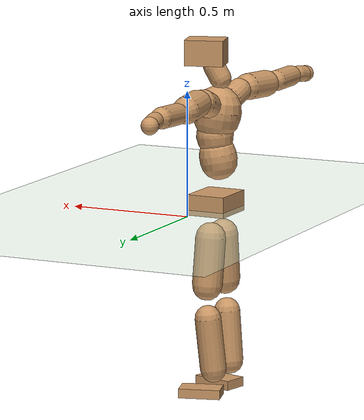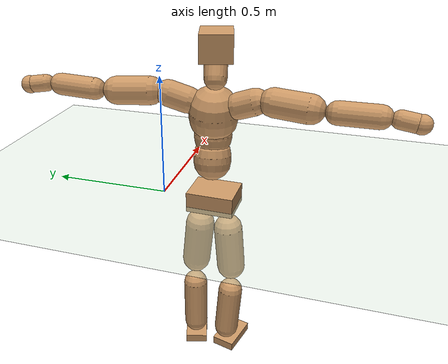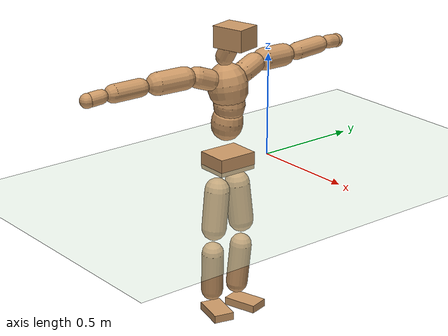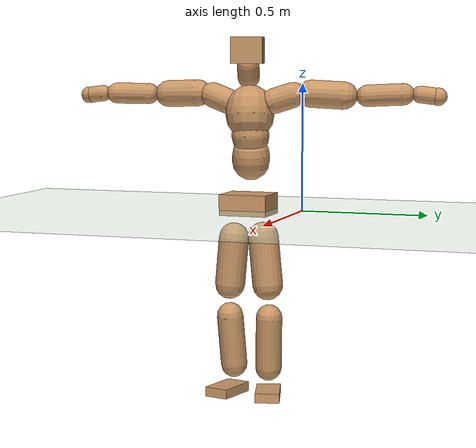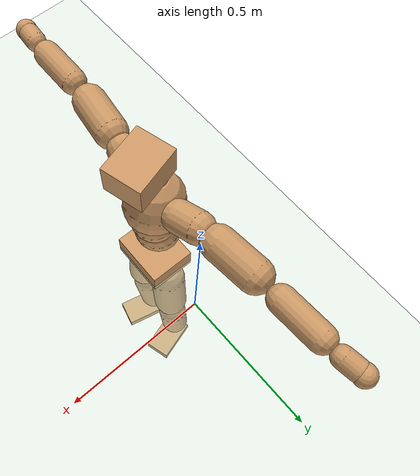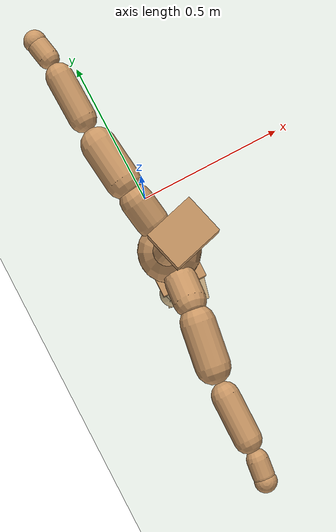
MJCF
<mujoco model="humanoid">
  <compiler coordinate="local" angle="radian"/>
  <default>
    <joint damping="0.0" armature="0.01" stiffness="0.0" limited="true"/>
    <geom conaffinity="1" condim="3" contype="7" margin="0.001" rgba="0.8 0.6 .4 1"/>
  </default>
  <asset>
    <texture type="skybox" builtin="gradient" rgb1=".4 .5 .6" rgb2="0 0 0" width="100" height="100"/>
    <texture builtin="flat" height="1278" mark="cross" markrgb="1 1 1" name="texgeom" random="0.01" rgb1="0.8 0.6 0.4" rgb2="0.8 0.6 0.4" type="cube" width="127"/>
    <texture builtin="checker" height="100" name="texplane" rgb1="0 0 0" rgb2="0.8 0.8 0.8" type="2d" width="100"/>
    <material name="MatPlane" reflectance="0.5" shininess="1" specular="1" texrepeat="60 60" texture="texplane"/>
    <material name="geom" texture="texgeom" texuniform="true"/>
  </asset>
  <worldbody>
    <light cutoff="100" diffuse="1 1 1" dir="-0 0 -1.3" directional="true" exponent="1" pos="0 0 1.3" specular=".1 .1 .1"/>
    <geom conaffinity="1" condim="3" name="floor" pos="0 0 0" rgba="0.8 0.9 0.8 1" size="100 100 .2" type="plane" material="MatPlane"/>
    <body name="Pelvis" pos="-0.0058 -0.2281 0.0265">
      <freejoint name="Pelvis"/>
      <geom type="box" contype="1" conaffinity="1" density="500" pos="-0.0112 0.0002 -0.0077" size="0.0787 0.0968 0.0418" quat="1.0000 0.0000 0.0000 -0.0092" name="Pelvis"/>
      <body name="L_Hip" pos="-0.0184 0.054 -0.0747">
        <joint name="L_Hip_x" type="hinge" pos="0 0 0" axis="1 0 0" stiffness="800" damping="80" armature="0.02" range="-180.0000 180.0000"/>
        <joint name="L_Hip_y" type="hinge" pos="0 0 0" axis="0 1 0" stiffness="800" damping="80" armature="0.02" range="-180.0000 180.0000"/>
        <joint name="L_Hip_z" type="hinge" pos="0 0 0" axis="0 0 1" stiffness="800" damping="80" armature="0.02" range="-180.0000 180.0000"/>
        <geom type="capsule" contype="1" conaffinity="1" density="500" fromto="0.0018 0.0067 -0.0641 0.0071 0.0268 -0.2566" size="0.0607" name="L_Hip"/>
        <body name="L_Knee" pos="0.0089 0.0335 -0.3207">
          <joint name="L_Knee_x" type="hinge" pos="0 0 0" axis="1 0 0" stiffness="800" damping="80" armature="0.02" range="-180.0000 180.0000"/>
          <joint name="L_Knee_y" type="hinge" pos="0 0 0" axis="0 1 0" stiffness="800" damping="80" armature="0.02" range="-180.0000 180.0000"/>
          <joint name="L_Knee_z" type="hinge" pos="0 0 0" axis="0 0 1" stiffness="800" damping="80" armature="0.02" range="-180.0000 180.0000"/>
          <geom type="capsule" contype="1" conaffinity="1" density="500" fromto="-0.0068 -0.0028 -0.0697 -0.0272 -0.0111 -0.2789" size="0.0528" name="L_Knee"/>
          <body name="L_Ankle" pos="-0.034 -0.0138 -0.3486">
            <joint name="L_Ankle_x" type="hinge" pos="0 0 0" axis="1 0 0" stiffness="800" damping="80" armature="0.02" range="-180.0000 180.0000"/>
            <joint name="L_Ankle_y" type="hinge" pos="0 0 0" axis="0 1 0" stiffness="800" damping="80" armature="0.02" range="-180.0000 180.0000"/>
            <joint name="L_Ankle_z" type="hinge" pos="0 0 0" axis="0 0 1" stiffness="800" damping="80" armature="0.02" range="-180.0000 180.0000"/>
            <geom type="box" contype="1" conaffinity="1" density="500" pos="0.0556 0.0154 -0.0256" size="0.0839 0.0484 0.0191" quat="0.9909 0.0000 0.0000 0.1349" name="L_Ankle"/>
            <body name="L_Toe" pos="0.1112 0.0308 -0.0512">
              <joint name="L_Toe_x" type="hinge" pos="0 0 0" axis="1 0 0" stiffness="500" damping="50" armature="0.02" range="-180.0000 180.0000"/>
              <joint name="L_Toe_y" type="hinge" pos="0 0 0" axis="0 1 0" stiffness="500" damping="50" armature="0.02" range="-180.0000 180.0000"/>
              <joint name="L_Toe_z" type="hinge" pos="0 0 0" axis="0 0 1" stiffness="500" damping="50" armature="0.02" range="-180.0000 180.0000"/>
              <geom type="box" contype="1" conaffinity="1" density="500" pos="0.0000 0.0000 0.0244" size="0.0011 0.0024 0.0009" quat="0.9900 0.0000 0.0000 0.1408" name="L_Toe"/>
            </body>
          </body>
        </body>
      </body>
      <body name="R_Hip" pos="-0.0132 -0.0565 -0.0823">
        <joint name="R_Hip_x" type="hinge" pos="0 0 0" axis="1 0 0" stiffness="800" damping="80" armature="0.02" range="-180.0000 180.0000"/>
        <joint name="R_Hip_y" type="hinge" pos="0 0 0" axis="0 1 0" stiffness="800" damping="80" armature="0.02" range="-180.0000 180.0000"/>
        <joint name="R_Hip_z" type="hinge" pos="0 0 0" axis="0 0 1" stiffness="800" damping="80" armature="0.02" range="-180.0000 180.0000"/>
        <geom type="capsule" contype="1" conaffinity="1" density="500" fromto="-0.0007 -0.0060 -0.0634 -0.0028 -0.0239 -0.2536" size="0.0601" name="R_Hip"/>
        <body name="R_Knee" pos="-0.0035 -0.0298 -0.317">
          <joint name="R_Knee_x" type="hinge" pos="0 0 0" axis="1 0 0" stiffness="800" damping="80" armature="0.02" range="-180.0000 180.0000"/>
          <joint name="R_Knee_y" type="hinge" pos="0 0 0" axis="0 1 0" stiffness="800" damping="80" armature="0.02" range="-180.0000 180.0000"/>
          <joint name="R_Knee_z" type="hinge" pos="0 0 0" axis="0 0 1" stiffness="800" damping="80" armature="0.02" range="-180.0000 180.0000"/>
          <geom type="capsule" contype="1" conaffinity="1" density="500" fromto="-0.0064 0.0034 -0.0680 -0.0257 0.0134 -0.2720" size="0.0531" name="R_Knee"/>
          <body name="R_Ankle" pos="-0.0321 0.0168 -0.34">
            <joint name="R_Ankle_x" type="hinge" pos="0 0 0" axis="1 0 0" stiffness="800" damping="80" armature="0.02" range="-180.0000 180.0000"/>
            <joint name="R_Ankle_y" type="hinge" pos="0 0 0" axis="0 1 0" stiffness="800" damping="80" armature="0.02" range="-180.0000 180.0000"/>
            <joint name="R_Ankle_z" type="hinge" pos="0 0 0" axis="0 0 1" stiffness="800" damping="80" armature="0.02" range="-180.0000 180.0000"/>
            <geom type="box" contype="1" conaffinity="1" density="500" pos="0.0596 -0.0148 -0.0251" size="0.0833 0.05 0.0191" quat="0.9926 0.0000 0.0000 -0.1213" name="R_Ankle"/>
            <body name="R_Toe" pos="0.1192 -0.0296 -0.0502">
              <joint name="R_Toe_x" type="hinge" pos="0 0 0" axis="1 0 0" stiffness="500" damping="50" armature="0.02" range="-180.0000 180.0000"/>
              <joint name="R_Toe_y" type="hinge" pos="0 0 0" axis="0 1 0" stiffness="500" damping="50" armature="0.02" range="-180.0000 180.0000"/>
              <joint name="R_Toe_z" type="hinge" pos="0 0 0" axis="0 0 1" stiffness="500" damping="50" armature="0.02" range="-180.0000 180.0000"/>
              <geom type="box" contype="1" conaffinity="1" density="500" pos="0.0000 0.0000 0.0259" size="0.001 0.0025 0.001" quat="0.9937 0.0000 0.0000 -0.1116" name="R_Toe"/>
            </body>
          </body>
        </body>
      </body>
      <body name="Torso" pos="-0.0357 0.0037 0.1109">
        <joint name="Torso_x" type="hinge" pos="0 0 0" axis="1 0 0" stiffness="1000" damping="100" armature="0.02" range="-180.0000 180.0000"/>
        <joint name="Torso_y" type="hinge" pos="0 0 0" axis="0 1 0" stiffness="1000" damping="100" armature="0.02" range="-180.0000 180.0000"/>
        <joint name="Torso_z" type="hinge" pos="0 0 0" axis="0 0 1" stiffness="1000" damping="100" armature="0.02" range="-180.0000 180.0000"/>
        <geom type="capsule" contype="1" conaffinity="1" density="500" fromto="0.0136 0.0029 0.0776 0.0091 0.0019 0.0517" size="0.0749" name="Torso"/>
        <body name="Spine" pos="0.0227 0.0048 0.1293">
          <joint name="Spine_x" type="hinge" pos="0 0 0" axis="1 0 0" stiffness="1000" damping="100" armature="0.02" range="-180.0000 180.0000"/>
          <joint name="Spine_y" type="hinge" pos="0 0 0" axis="0 1 0" stiffness="1000" damping="100" armature="0.02" range="-180.0000 180.0000"/>
          <joint name="Spine_z" type="hinge" pos="0 0 0" axis="0 0 1" stiffness="1000" damping="100" armature="0.02" range="-180.0000 180.0000"/>
          <geom type="capsule" contype="1" conaffinity="1" density="500" fromto="0.0032 -0.0002 0.0316 0.0021 -0.0001 0.0210" size="0.0749" name="Spine"/>
          <body name="Chest" pos="0.0053 -0.0004 0.0526">
            <joint name="Chest_x" type="hinge" pos="0 0 0" axis="1 0 0" stiffness="1000" damping="100" armature="0.02" range="-180.0000 180.0000"/>
            <joint name="Chest_y" type="hinge" pos="0 0 0" axis="0 1 0" stiffness="1000" damping="100" armature="0.02" range="-180.0000 180.0000"/>
            <joint name="Chest_z" type="hinge" pos="0 0 0" axis="0 0 1" stiffness="1000" damping="100" armature="0.02" range="-180.0000 180.0000"/>
            <geom type="capsule" contype="1" conaffinity="1" density="500" fromto="-0.0126 -0.0048 0.0772 -0.0084 -0.0032 0.0515" size="0.0959" name="Chest"/>
            <body name="Neck" pos="-0.029 -0.0142 0.1862">
              <joint name="Neck_x" type="hinge" pos="0 0 0" axis="1 0 0" stiffness="500" damping="50" armature="0.02" range="-180.0000 180.0000"/>
              <joint name="Neck_y" type="hinge" pos="0 0 0" axis="0 1 0" stiffness="500" damping="50" armature="0.02" range="-180.0000 180.0000"/>
              <joint name="Neck_z" type="hinge" pos="0 0 0" axis="0 0 1" stiffness="500" damping="50" armature="0.02" range="-180.0000 180.0000"/>
              <geom type="capsule" contype="1" conaffinity="1" density="500" fromto="0.0085 0.0020 0.0161 0.0341 0.0079 0.0643" size="0.0437" name="Neck"/>
              <body name="Head" pos="0.0426 0.0099 0.0804">
                <joint name="Head_x" type="hinge" pos="0 0 0" axis="1 0 0" stiffness="500" damping="50" armature="0.02" range="-180.0000 180.0000"/>
                <joint name="Head_y" type="hinge" pos="0 0 0" axis="0 1 0" stiffness="500" damping="50" armature="0.02" range="-180.0000 180.0000"/>
                <joint name="Head_z" type="hinge" pos="0 0 0" axis="0 0 1" stiffness="500" damping="50" armature="0.02" range="-180.0000 180.0000"/>
                <geom type="box" contype="1" conaffinity="1" density="500" pos="0.0223 0.0059 0.0412" size="0.078 0.0622 0.0513" quat="0.9916 0.0000 0.0000 0.1297" name="Head"/>
              </body>
            </body>
            <body name="L_Thorax" pos="-0.0132 0.0687 0.1012">
              <joint name="L_Thorax_x" type="hinge" pos="0 0 0" axis="1 0 0" stiffness="500" damping="50" armature="0.02" range="-180.0000 180.0000"/>
              <joint name="L_Thorax_y" type="hinge" pos="0 0 0" axis="0 1 0" stiffness="500" damping="50" armature="0.02" range="-180.0000 180.0000"/>
              <joint name="L_Thorax_z" type="hinge" pos="0 0 0" axis="0 0 1" stiffness="500" damping="50" armature="0.02" range="-180.0000 180.0000"/>
              <geom type="capsule" contype="1" conaffinity="1" density="500" fromto="-0.0041 0.0249 0.0081 -0.0163 0.0997 0.0323" size="0.0509" name="L_Thorax"/>
              <body name="L_Shoulder" pos="-0.0204 0.1246 0.0404">
                <joint name="L_Shoulder_x" type="hinge" pos="0 0 0" axis="1 0 0" stiffness="500" damping="50" armature="0.02" range="-720.0000 720.0000"/>
                <joint name="L_Shoulder_y" type="hinge" pos="0 0 0" axis="0 1 0" stiffness="500" damping="50" armature="0.02" range="-720.0000 720.0000"/>
                <joint name="L_Shoulder_z" type="hinge" pos="0 0 0" axis="0 0 1" stiffness="500" damping="50" armature="0.02" range="-720.0000 720.0000"/>
                <geom type="capsule" contype="1" conaffinity="1" density="500" fromto="-0.0046 0.0438 -0.0023 -0.0184 0.1753 -0.0093" size="0.0543" name="L_Shoulder"/>
                <body name="L_Elbow" pos="-0.023 0.2192 -0.0116">
                  <joint name="L_Elbow_x" type="hinge" pos="0 0 0" axis="1 0 0" stiffness="500" damping="50" armature="0.02" range="-720.0000 720.0000"/>
                  <joint name="L_Elbow_y" type="hinge" pos="0 0 0" axis="0 1 0" stiffness="500" damping="50" armature="0.02" range="-720.0000 720.0000"/>
                  <joint name="L_Elbow_z" type="hinge" pos="0 0 0" axis="0 0 1" stiffness="500" damping="50" armature="0.02" range="-720.0000 720.0000"/>
                  <geom type="capsule" contype="1" conaffinity="1" density="500" fromto="-0.0010 0.0478 0.0023 -0.0041 0.1913 0.0091" size="0.0423" name="L_Elbow"/>
                  <body name="L_Wrist" pos="-0.0052 0.2391 0.0114">
                    <joint name="L_Wrist_x" type="hinge" pos="0 0 0" axis="1 0 0" stiffness="300" damping="30" armature="0.02" range="-180.0000 180.0000"/>
                    <joint name="L_Wrist_y" type="hinge" pos="0 0 0" axis="0 1 0" stiffness="300" damping="30" armature="0.02" range="-180.0000 180.0000"/>
                    <joint name="L_Wrist_z" type="hinge" pos="0 0 0" axis="0 0 1" stiffness="300" damping="30" armature="0.02" range="-180.0000 180.0000"/>
                    <geom type="capsule" contype="1" conaffinity="1" density="500" fromto="-0.0030 0.0168 -0.0021 -0.0119 0.0672 -0.0085" size="0.0332" name="L_Wrist"/>
                    <body name="L_Hand" pos="-0.0149 0.0839 -0.0106">
                      <joint name="L_Hand_x" type="hinge" pos="0 0 0" axis="1 0 0" stiffness="300" damping="30" armature="0.02" range="-180.0000 180.0000"/>
                      <joint name="L_Hand_y" type="hinge" pos="0 0 0" axis="0 1 0" stiffness="300" damping="30" armature="0.02" range="-180.0000 180.0000"/>
                      <joint name="L_Hand_z" type="hinge" pos="0 0 0" axis="0 0 1" stiffness="300" damping="30" armature="0.02" range="-180.0000 180.0000"/>
                      <geom type="sphere" contype="1" conaffinity="1" density="500" size="0.0345" pos="0.0000 0.0000 0.0000" name="L_Hand"/>
                    </body>
                  </body>
                </body>
              </body>
            </body>
            <body name="R_Thorax" pos="-0.0206 -0.0783 0.0987">
              <joint name="R_Thorax_x" type="hinge" pos="0 0 0" axis="1 0 0" stiffness="500" damping="50" armature="0.02" range="-180.0000 180.0000"/>
              <joint name="R_Thorax_y" type="hinge" pos="0 0 0" axis="0 1 0" stiffness="500" damping="50" armature="0.02" range="-180.0000 180.0000"/>
              <joint name="R_Thorax_z" type="hinge" pos="0 0 0" axis="0 0 1" stiffness="500" damping="50" armature="0.02" range="-180.0000 180.0000"/>
              <geom type="capsule" contype="1" conaffinity="1" density="500" fromto="-0.0021 -0.0222 0.0082 -0.0082 -0.0887 0.0326" size="0.05" name="R_Thorax"/>
              <body name="R_Shoulder" pos="-0.0103 -0.1109 0.0408">
                <joint name="R_Shoulder_x" type="hinge" pos="0 0 0" axis="1 0 0" stiffness="500" damping="50" armature="0.02" range="-720.0000 720.0000"/>
                <joint name="R_Shoulder_y" type="hinge" pos="0 0 0" axis="0 1 0" stiffness="500" damping="50" armature="0.02" range="-720.0000 720.0000"/>
                <joint name="R_Shoulder_z" type="hinge" pos="0 0 0" axis="0 0 1" stiffness="500" damping="50" armature="0.02" range="-720.0000 720.0000"/>
                <geom type="capsule" contype="1" conaffinity="1" density="500" fromto="-0.0068 -0.0444 -0.0014 -0.0271 -0.1778 -0.0056" size="0.0539" name="R_Shoulder"/>
                <body name="R_Elbow" pos="-0.0339 -0.2222 -0.007">
                  <joint name="R_Elbow_x" type="hinge" pos="0 0 0" axis="1 0 0" stiffness="500" damping="50" armature="0.02" range="-720.0000 720.0000"/>
                  <joint name="R_Elbow_y" type="hinge" pos="0 0 0" axis="0 1 0" stiffness="500" damping="50" armature="0.02" range="-720.0000 720.0000"/>
                  <joint name="R_Elbow_z" type="hinge" pos="0 0 0" axis="0 0 1" stiffness="500" damping="50" armature="0.02" range="-720.0000 720.0000"/>
                  <geom type="capsule" contype="1" conaffinity="1" density="500" fromto="-0.0005 -0.0471 0.0003 -0.0021 -0.1885 0.0011" size="0.0423" name="R_Elbow"/>
                  <body name="R_Wrist" pos="-0.0026 -0.2356 0.0014">
                    <joint name="R_Wrist_x" type="hinge" pos="0 0 0" axis="1 0 0" stiffness="300" damping="30" armature="0.02" range="-180.0000 180.0000"/>
                    <joint name="R_Wrist_y" type="hinge" pos="0 0 0" axis="0 1 0" stiffness="300" damping="30" armature="0.02" range="-180.0000 180.0000"/>
                    <joint name="R_Wrist_z" type="hinge" pos="0 0 0" axis="0 0 1" stiffness="300" damping="30" armature="0.02" range="-180.0000 180.0000"/>
                    <geom type="capsule" contype="1" conaffinity="1" density="500" fromto="-0.0019 -0.0167 -0.0017 -0.0076 -0.0669 -0.0068" size="0.0331" name="R_Wrist"/>
                    <body name="R_Hand" pos="-0.0096 -0.0837 -0.0085">
                      <joint name="R_Hand_x" type="hinge" pos="0 0 0" axis="1 0 0" stiffness="300" damping="30" armature="0.02" range="-180.0000 180.0000"/>
                      <joint name="R_Hand_y" type="hinge" pos="0 0 0" axis="0 1 0" stiffness="300" damping="30" armature="0.02" range="-180.0000 180.0000"/>
                      <joint name="R_Hand_z" type="hinge" pos="0 0 0" axis="0 0 1" stiffness="300" damping="30" armature="0.02" range="-180.0000 180.0000"/>
                      <geom type="sphere" contype="1" conaffinity="1" density="500" size="0.0341" pos="0.0000 0.0000 0.0000" name="R_Hand"/>
                    </body>
                  </body>
                </body>
              </body>
            </body>
          </body>
        </body>
      </body>
    </body>
  </worldbody>
  <actuator>
    <motor name="L_Hip_x" joint="L_Hip_x" gear="500"/>
    <motor name="L_Hip_y" joint="L_Hip_y" gear="500"/>
    <motor name="L_Hip_z" joint="L_Hip_z" gear="500"/>
    <motor name="L_Knee_x" joint="L_Knee_x" gear="500"/>
    <motor name="L_Knee_y" joint="L_Knee_y" gear="500"/>
    <motor name="L_Knee_z" joint="L_Knee_z" gear="500"/>
    <motor name="L_Ankle_x" joint="L_Ankle_x" gear="500"/>
    <motor name="L_Ankle_y" joint="L_Ankle_y" gear="500"/>
    <motor name="L_Ankle_z" joint="L_Ankle_z" gear="500"/>
    <motor name="L_Toe_x" joint="L_Toe_x" gear="500"/>
    <motor name="L_Toe_y" joint="L_Toe_y" gear="500"/>
    <motor name="L_Toe_z" joint="L_Toe_z" gear="500"/>
    <motor name="R_Hip_x" joint="R_Hip_x" gear="500"/>
    <motor name="R_Hip_y" joint="R_Hip_y" gear="500"/>
    <motor name="R_Hip_z" joint="R_Hip_z" gear="500"/>
    <motor name="R_Knee_x" joint="R_Knee_x" gear="500"/>
    <motor name="R_Knee_y" joint="R_Knee_y" gear="500"/>
    <motor name="R_Knee_z" joint="R_Knee_z" gear="500"/>
    <motor name="R_Ankle_x" joint="R_Ankle_x" gear="500"/>
    <motor name="R_Ankle_y" joint="R_Ankle_y" gear="500"/>
    <motor name="R_Ankle_z" joint="R_Ankle_z" gear="500"/>
    <motor name="R_Toe_x" joint="R_Toe_x" gear="500"/>
    <motor name="R_Toe_y" joint="R_Toe_y" gear="500"/>
    <motor name="R_Toe_z" joint="R_Toe_z" gear="500"/>
    <motor name="Torso_x" joint="Torso_x" gear="500"/>
    <motor name="Torso_y" joint="Torso_y" gear="500"/>
    <motor name="Torso_z" joint="Torso_z" gear="500"/>
    <motor name="Spine_x" joint="Spine_x" gear="500"/>
    <motor name="Spine_y" joint="Spine_y" gear="500"/>
    <motor name="Spine_z" joint="Spine_z" gear="500"/>
    <motor name="Chest_x" joint="Chest_x" gear="500"/>
    <motor name="Chest_y" joint="Chest_y" gear="500"/>
    <motor name="Chest_z" joint="Chest_z" gear="500"/>
    <motor name="Neck_x" joint="Neck_x" gear="500"/>
    <motor name="Neck_y" joint="Neck_y" gear="500"/>
    <motor name="Neck_z" joint="Neck_z" gear="500"/>
    <motor name="Head_x" joint="Head_x" gear="500"/>
    <motor name="Head_y" joint="Head_y" gear="500"/>
    <motor name="Head_z" joint="Head_z" gear="500"/>
    <motor name="L_Thorax_x" joint="L_Thorax_x" gear="500"/>
    <motor name="L_Thorax_y" joint="L_Thorax_y" gear="500"/>
    <motor name="L_Thorax_z" joint="L_Thorax_z" gear="500"/>
    <motor name="L_Shoulder_x" joint="L_Shoulder_x" gear="500"/>
    <motor name="L_Shoulder_y" joint="L_Shoulder_y" gear="500"/>
    <motor name="L_Shoulder_z" joint="L_Shoulder_z" gear="500"/>
    <motor name="L_Elbow_x" joint="L_Elbow_x" gear="500"/>
    <motor name="L_Elbow_y" joint="L_Elbow_y" gear="500"/>
    <motor name="L_Elbow_z" joint="L_Elbow_z" gear="500"/>
    <motor name="L_Wrist_x" joint="L_Wrist_x" gear="500"/>
    <motor name="L_Wrist_y" joint="L_Wrist_y" gear="500"/>
    <motor name="L_Wrist_z" joint="L_Wrist_z" gear="500"/>
    <motor name="L_Hand_x" joint="L_Hand_x" gear="500"/>
    <motor name="L_Hand_y" joint="L_Hand_y" gear="500"/>
    <motor name="L_Hand_z" joint="L_Hand_z" gear="500"/>
    <motor name="R_Thorax_x" joint="R_Thorax_x" gear="500"/>
    <motor name="R_Thorax_y" joint="R_Thorax_y" gear="500"/>
    <motor name="R_Thorax_z" joint="R_Thorax_z" gear="500"/>
    <motor name="R_Shoulder_x" joint="R_Shoulder_x" gear="500"/>
    <motor name="R_Shoulder_y" joint="R_Shoulder_y" gear="500"/>
    <motor name="R_Shoulder_z" joint="R_Shoulder_z" gear="500"/>
    <motor name="R_Elbow_x" joint="R_Elbow_x" gear="500"/>
    <motor name="R_Elbow_y" joint="R_Elbow_y" gear="500"/>
    <motor name="R_Elbow_z" joint="R_Elbow_z" gear="500"/>
    <motor name="R_Wrist_x" joint="R_Wrist_x" gear="500"/>
    <motor name="R_Wrist_y" joint="R_Wrist_y" gear="500"/>
    <motor name="R_Wrist_z" joint="R_Wrist_z" gear="500"/>
    <motor name="R_Hand_x" joint="R_Hand_x" gear="500"/>
    <motor name="R_Hand_y" joint="R_Hand_y" gear="500"/>
    <motor name="R_Hand_z" joint="R_Hand_z" gear="500"/>
  </actuator>
  <contact>
    <exclude body1="Torso" body2="Chest"/>
    <exclude body1="Head" body2="Chest"/>
    <exclude body1="R_Knee" body2="R_Toe"/>
    <exclude body1="R_Knee" body2="L_Ankle"/>
    <exclude body1="R_Knee" body2="L_Toe"/>
    <exclude body1="L_Knee" body2="L_Toe"/>
    <exclude body1="L_Knee" body2="R_Ankle"/>
    <exclude body1="L_Knee" body2="R_Toe"/>
    <exclude body1="L_Shoulder" body2="Chest"/>
    <exclude body1="R_Shoulder" body2="Chest"/>
  </contact>
  <sensor/>
  <size njmax="700" nconmax="700"/>
</mujoco>
